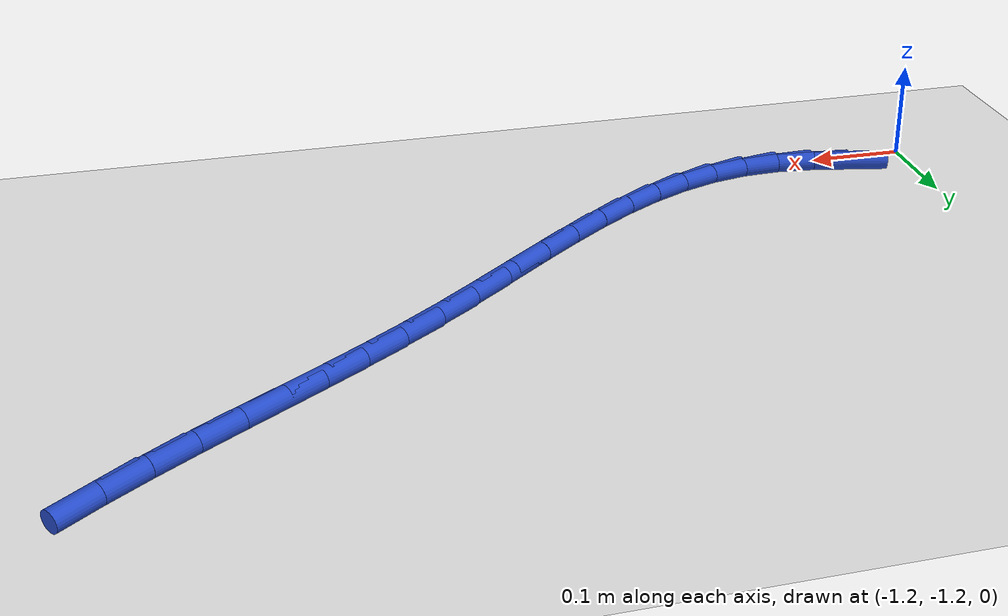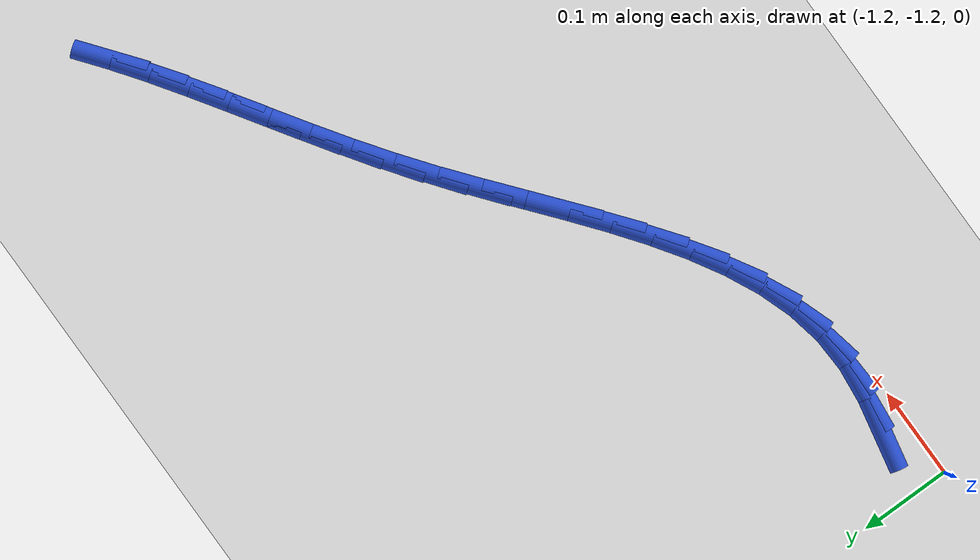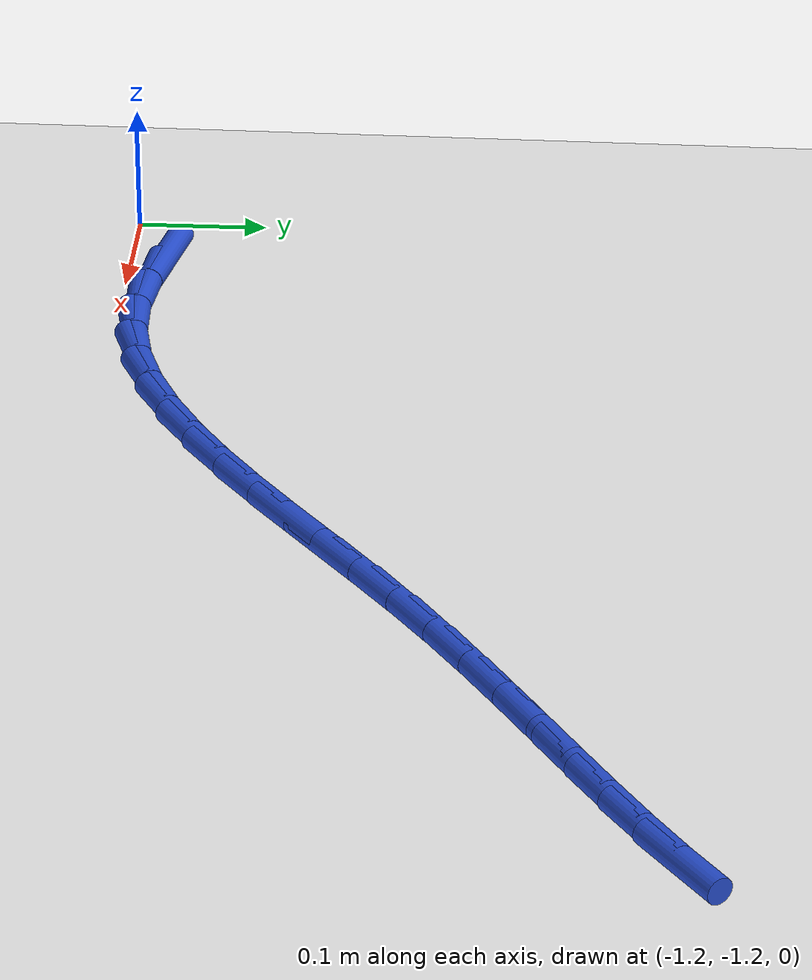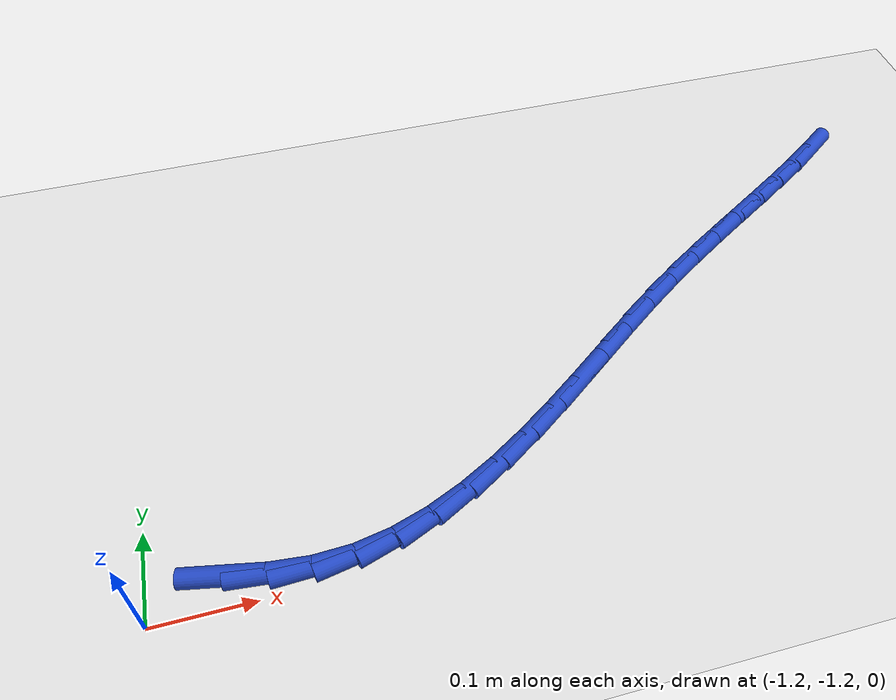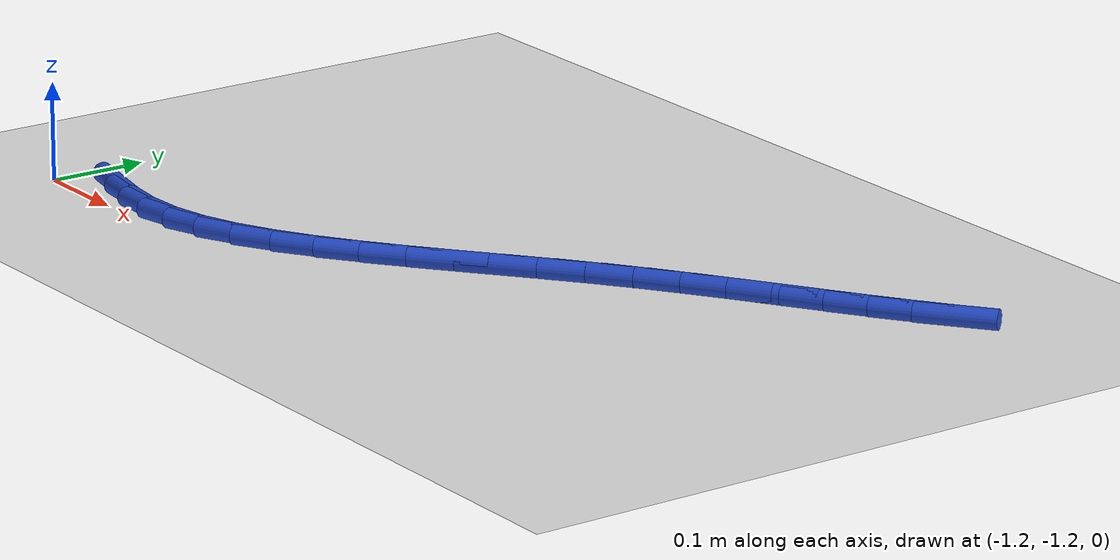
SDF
<sdf version="1.6">
 <world name="default">
  <model name="ground_plane">
   <static>1</static>
   <link name="link">
    <collision name="collision">
     <geometry><plane><normal>0 0 1</normal><size>100 100</size></plane></geometry>
     <surface><friction><ode><mu>100</mu><mu2>50</mu2></ode></friction></surface>
    </collision>
    <visual name="visual">
     <cast_shadows>0</cast_shadows>
     <geometry><plane><normal>0 0 1</normal><size>100 100</size></plane></geometry>
     <material>
      <script><uri>file://media/materials/scripts/gazebo.material</uri><name>Gazebo/WhiteGlow</name></script>
     </material>
    </visual>
   </link>
  </model>
  <model name="line">
   <link name="link_129">
    <pose>-1.1301871318504435 -1.1716739972445873 0.01 0 1.57 -0.20256068877736882</pose>
    <collision name="collision">
     <geometry><cylinder><radius>0.01</radius><length>0.08</length></cylinder></geometry>
    </collision>
    <visual name="visual">
     <material>
      <script><name>Gazebo/Blue</name><uri>file://media/materials/scripts/gazebo.material</uri></script>
     </material>
     <geometry><cylinder><radius>0.01</radius><length>0.08</length></cylinder></geometry>
    </visual>
   </link>
   <link name="link_130">
    <pose>-1.0896464831156083 -1.180000127715195 0.01 0 1.57 -0.10269984158317935</pose>
    <collision name="collision">
     <geometry><cylinder><radius>0.01</radius><length>0.08</length></cylinder></geometry>
    </collision>
    <visual name="visual">
     <material>
      <script><name>Gazebo/Blue</name><uri>file://media/materials/scripts/gazebo.material</uri></script>
     </material>
     <geometry><cylinder><radius>0.01</radius><length>0.08</length></cylinder></geometry>
    </visual>
   </link>
   <link name="link_131">
    <pose>-1.0499802846686672 -1.184088222858927 0.01 0 1.57 0.043904476162769115</pose>
    <collision name="collision">
     <geometry><cylinder><radius>0.01</radius><length>0.08</length></cylinder></geometry>
    </collision>
    <visual name="visual">
     <material>
      <script><name>Gazebo/Blue</name><uri>file://media/materials/scripts/gazebo.material</uri></script>
     </material>
     <geometry><cylinder><radius>0.01</radius><length>0.08</length></cylinder></geometry>
    </visual>
   </link>
   <link name="link_132">
    <pose>-1.0110662395426042 -1.182378623474789 0.01 0 1.57 0.20215604355752503</pose>
    <collision name="collision">
     <geometry><cylinder><radius>0.01</radius><length>0.08</length></cylinder></geometry>
    </collision>
    <visual name="visual">
     <material>
      <script><name>Gazebo/Blue</name><uri>file://media/materials/scripts/gazebo.material</uri></script>
     </material>
     <geometry><cylinder><radius>0.01</radius><length>0.08</length></cylinder></geometry>
    </visual>
   </link>
   <link name="link_133">
    <pose>-0.9727992790784353 -1.174535593384191 0.01 0 1.57 0.33786732148361537</pose>
    <collision name="collision">
     <geometry><cylinder><radius>0.01</radius><length>0.08</length></cylinder></geometry>
    </collision>
    <visual name="visual">
     <material>
      <script><name>Gazebo/Blue</name><uri>file://media/materials/scripts/gazebo.material</uri></script>
     </material>
     <geometry><cylinder><radius>0.01</radius><length>0.08</length></cylinder></geometry>
    </visual>
   </link>
   <link name="link_134">
    <pose>-0.9350893006164519 -1.1612866018626098 0.01 0 1.57 0.44786196835059106</pose>
    <collision name="collision">
     <geometry><cylinder><radius>0.01</radius><length>0.08</length></cylinder></geometry>
    </collision>
    <visual name="visual">
     <material>
      <script><name>Gazebo/Blue</name><uri>file://media/materials/scripts/gazebo.material</uri></script>
     </material>
     <geometry><cylinder><radius>0.01</radius><length>0.08</length></cylinder></geometry>
    </visual>
   </link>
   <link name="link_135">
    <pose>-0.8978466992517155 -1.1433944793783826 0.01 0 1.57 0.5334801676328668</pose>
    <collision name="collision">
     <geometry><cylinder><radius>0.01</radius><length>0.08</length></cylinder></geometry>
    </collision>
    <visual name="visual">
     <material>
      <script><name>Gazebo/Blue</name><uri>file://media/materials/scripts/gazebo.material</uri></script>
     </material>
     <geometry><cylinder><radius>0.01</radius><length>0.08</length></cylinder></geometry>
    </visual>
   </link>
   <link name="link_136">
    <pose>-0.8609818700792872 -1.121622056399847 0.01 0 1.57 0.59750866422375</pose>
    <collision name="collision">
     <geometry><cylinder><radius>0.01</radius><length>0.08</length></cylinder></geometry>
    </collision>
    <visual name="visual">
     <material>
      <script><name>Gazebo/Blue</name><uri>file://media/materials/scripts/gazebo.material</uri></script>
     </material>
     <geometry><cylinder><radius>0.01</radius><length>0.08</length></cylinder></geometry>
    </visual>
   </link>
   <link name="link_137">
    <pose>-0.8244052081942307 -1.096732163395342 0.01 0 1.57 0.642813887730244</pose>
    <collision name="collision">
     <geometry><cylinder><radius>0.01</radius><length>0.08</length></cylinder></geometry>
    </collision>
    <visual name="visual">
     <material>
      <script><name>Gazebo/Blue</name><uri>file://media/materials/scripts/gazebo.material</uri></script>
     </material>
     <geometry><cylinder><radius>0.01</radius><length>0.08</length></cylinder></geometry>
    </visual>
   </link>
   <link name="link_138">
    <pose>-0.788027108691607 -1.069487630833204 0.01 0 1.57 0.671724818045852</pose>
    <collision name="collision">
     <geometry><cylinder><radius>0.01</radius><length>0.08</length></cylinder></geometry>
    </collision>
    <visual name="visual">
     <material>
      <script><name>Gazebo/Blue</name><uri>file://media/materials/scripts/gazebo.material</uri></script>
     </material>
     <geometry><cylinder><radius>0.01</radius><length>0.08</length></cylinder></geometry>
    </visual>
   </link>
   <link name="link_139">
    <pose>-0.7517579666664778 -1.0406512891817714 0.01 0 1.57 0.6858352855207417</pose>
    <collision name="collision">
     <geometry><cylinder><radius>0.01</radius><length>0.08</length></cylinder></geometry>
    </collision>
    <visual name="visual">
     <material>
      <script><name>Gazebo/Blue</name><uri>file://media/materials/scripts/gazebo.material</uri></script>
     </material>
     <geometry><cylinder><radius>0.01</radius><length>0.08</length></cylinder></geometry>
    </visual>
   </link>
   <link name="link_140">
    <pose>-0.7155081772139054 -1.010985968909382 0.01 0 1.57 0.6859780129205827</pose>
    <collision name="collision">
     <geometry><cylinder><radius>0.01</radius><length>0.08</length></cylinder></geometry>
    </collision>
    <visual name="visual">
     <material>
      <script><name>Gazebo/Blue</name><uri>file://media/materials/scripts/gazebo.material</uri></script>
     </material>
     <geometry><cylinder><radius>0.01</radius><length>0.08</length></cylinder></geometry>
    </visual>
   </link>
   <link name="link_141">
    <pose>-0.6791881354289511 -0.9812545004843732 0.01 0 1.57 0.6722432287177185</pose>
    <collision name="collision">
     <geometry><cylinder><radius>0.01</radius><length>0.08</length></cylinder></geometry>
    </collision>
    <visual name="visual">
     <material>
      <script><name>Gazebo/Blue</name><uri>file://media/materials/scripts/gazebo.material</uri></script>
     </material>
     <geometry><cylinder><radius>0.01</radius><length>0.08</length></cylinder></geometry>
    </visual>
   </link>
   <link name="link_142">
    <pose>-0.6427082364066762 -0.9522197143750821 0.01 0 1.57 0.6448577365322179</pose>
    <collision name="collision">
     <geometry><cylinder><radius>0.01</radius><length>0.08</length></cylinder></geometry>
    </collision>
    <visual name="visual">
     <material>
      <script><name>Gazebo/Blue</name><uri>file://media/materials/scripts/gazebo.material</uri></script>
     </material>
     <geometry><cylinder><radius>0.01</radius><length>0.08</length></cylinder></geometry>
    </visual>
   </link>
   <link name="link_143">
    <pose>-0.6059889661212526 -0.9246023473679744 0.01 0 1.57 0.6156086945950541</pose>
    <collision name="collision">
     <geometry><cylinder><radius>0.01</radius><length>0.08</length></cylinder></geometry>
    </collision>
    <visual name="visual">
     <material>
      <script><name>Gazebo/Blue</name><uri>file://media/materials/scripts/gazebo.material</uri></script>
     </material>
     <geometry><cylinder><radius>0.01</radius><length>0.08</length></cylinder></geometry>
    </visual>
   </link>
   <link name="link_144">
    <pose>-0.5690979558887391 -0.898509325585042 0.01 0 1.57 0.5943015651654272</pose>
    <collision name="collision">
     <geometry><cylinder><radius>0.01</radius><length>0.08</length></cylinder></geometry>
    </collision>
    <visual name="visual">
     <material>
      <script><name>Gazebo/Blue</name><uri>file://media/materials/scripts/gazebo.material</uri></script>
     </material>
     <geometry><cylinder><radius>0.01</radius><length>0.08</length></cylinder></geometry>
    </visual>
   </link>
   <link name="link_145">
    <pose>-0.5322141753785596 -0.8735831318449271 0.01 0 1.57 0.5816585784824955</pose>
    <collision name="collision">
     <geometry><cylinder><radius>0.01</radius><length>0.08</length></cylinder></geometry>
    </collision>
    <visual name="visual">
     <material>
      <script><name>Gazebo/Blue</name><uri>file://media/materials/scripts/gazebo.material</uri></script>
     </material>
     <geometry><cylinder><radius>0.01</radius><length>0.08</length></cylinder></geometry>
    </visual>
   </link>
   <link name="link_146">
    <pose>-0.4955193487306309 -0.8494547588073461 0.01 0 1.57 0.5780930810657826</pose>
    <collision name="collision">
     <geometry><cylinder><radius>0.01</radius><length>0.08</length></cylinder></geometry>
    </collision>
    <visual name="visual">
     <material>
      <script><name>Gazebo/Blue</name><uri>file://media/materials/scripts/gazebo.material</uri></script>
     </material>
     <geometry><cylinder><radius>0.01</radius><length>0.08</length></cylinder></geometry>
    </visual>
   </link>
   <link name="link_147">
    <pose>-0.459195200084869 -0.8257551991320153 0.01 0 1.57 0.5839647648267265</pose>
    <collision name="collision">
     <geometry><cylinder><radius>0.01</radius><length>0.08</length></cylinder></geometry>
    </collision>
    <visual name="visual">
     <material>
      <script><name>Gazebo/Blue</name><uri>file://media/materials/scripts/gazebo.material</uri></script>
     </material>
     <geometry><cylinder><radius>0.01</radius><length>0.08</length></cylinder></geometry>
    </visual>
   </link>
   <link name="link_148">
    <pose>-0.4234234535811919 -0.8021154454786524 0.01 0 1.57 0.5995805160238842</pose>
    <collision name="collision">
     <geometry><cylinder><radius>0.01</radius><length>0.08</length></cylinder></geometry>
    </collision>
    <visual name="visual">
     <material>
      <script><name>Gazebo/Blue</name><uri>file://media/materials/scripts/gazebo.material</uri></script>
     </material>
     <geometry><cylinder><radius>0.01</radius><length>0.08</length></cylinder></geometry>
    </visual>
   </link>
   <link name="link_149">
    <pose>-0.3883858333595158 -0.7781664905069735 0.01 0 1.57 0.6251703148997559</pose>
    <collision name="collision">
     <geometry><cylinder><radius>0.01</radius><length>0.08</length></cylinder></geometry>
    </collision>
    <visual name="visual">
     <material>
      <script><name>Gazebo/Blue</name><uri>file://media/materials/scripts/gazebo.material</uri></script>
     </material>
     <geometry><cylinder><radius>0.01</radius><length>0.08</length></cylinder></geometry>
    </visual>
   </link>
   <link name="link_150">
    <pose>-0.35426406355975726 -0.7535393268766953 0.01 0 1.57 0.6608336030063109</pose>
    <collision name="collision">
     <geometry><cylinder><radius>0.01</radius><length>0.08</length></cylinder></geometry>
    </collision>
    <visual name="visual">
     <material>
      <script><name>Gazebo/Blue</name><uri>file://media/materials/scripts/gazebo.material</uri></script>
     </material>
     <geometry><cylinder><radius>0.01</radius><length>0.08</length></cylinder></geometry>
    </visual>
   </link>
  </model>
 </world>
</sdf>
